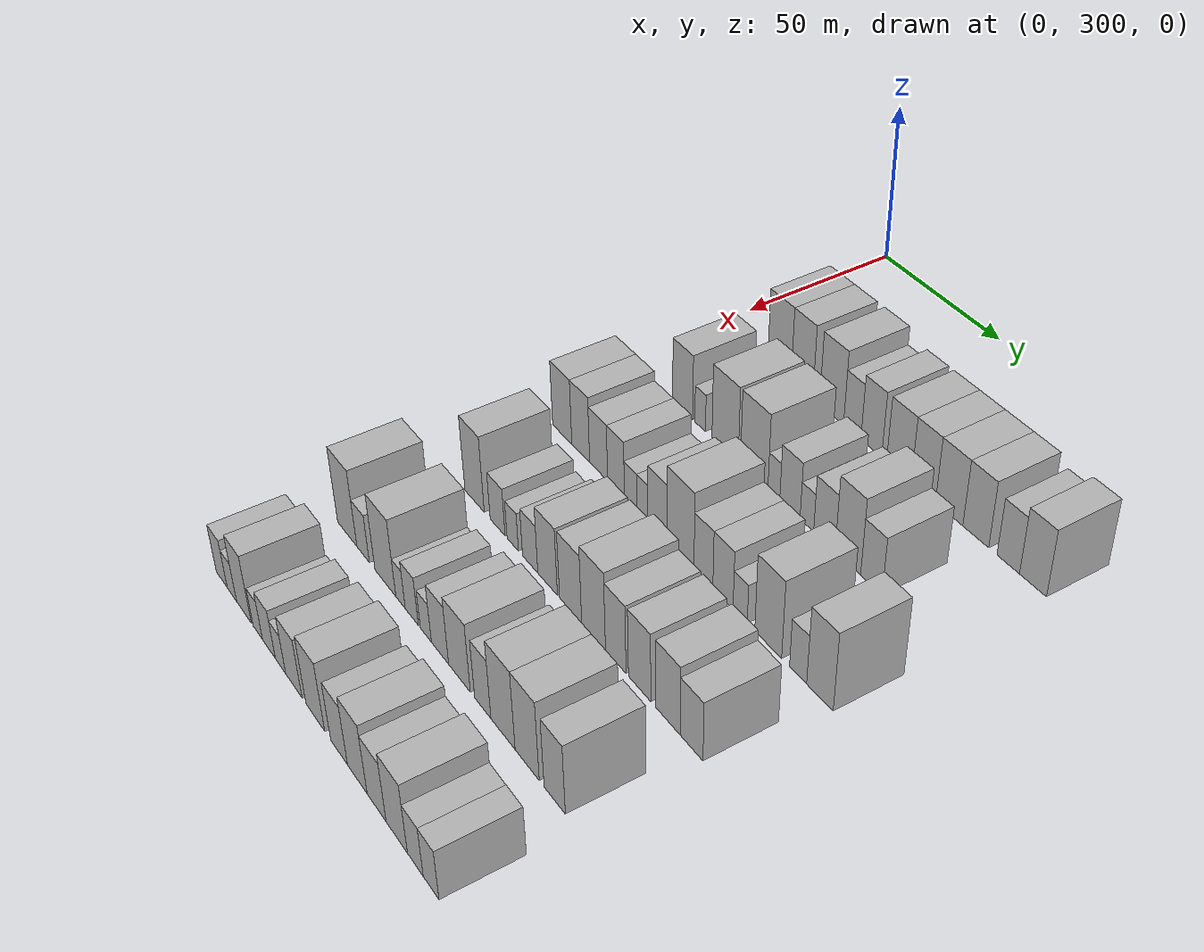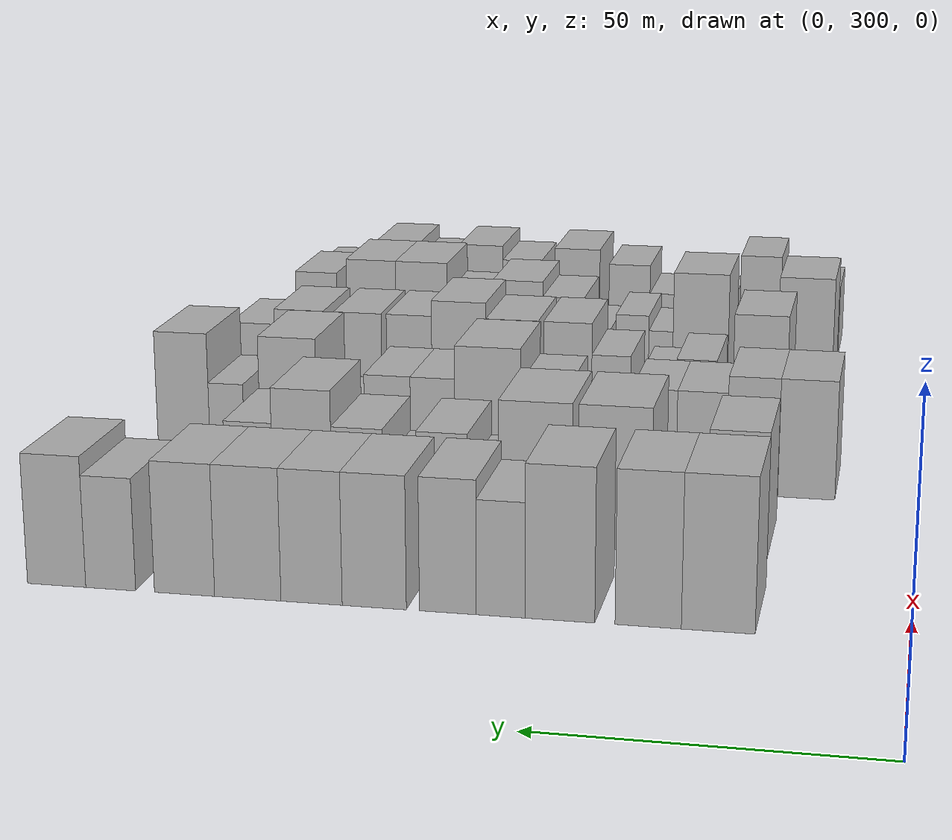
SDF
<sdf version="1.6">
 <world name="default">
  <model name="building_92">
   <static>1</static>
   <pose>50.0000 327.7333 0 0.000000 0.000000 0.000000</pose>
   <link name="link">
    <pose>0 0 12.00 0 0 0</pose>
    <collision name="collision"><geometry><box><size>20.0000 10.7605 24.0000</size></box></geometry></collision>
    <visual name="visual">
     <cast_shadows>0</cast_shadows>
     <geometry><box><size>20.0000 10.7605 24.0000</size></box></geometry>
     <material>
      <script>
       <uri>model://HANNAS_wall/materials/scripts</uri>
       <uri>model://HANNAS_wall/materials/textures</uri>
       <name>vrc/HANNAS_wall</name>
      </script>
     </material>
    </visual>
   </link>
  </model>
  <model name="building_93">
   <static>1</static>
   <pose>50.0000 338.0000 0 0.000000 0.000000 0.000000</pose>
   <link name="link">
    <pose>0 0 12.00 0 0 0</pose>
    <collision name="collision"><geometry><box><size>20.0000 9.7730 24.0000</size></box></geometry></collision>
    <visual name="visual">
     <cast_shadows>0</cast_shadows>
     <geometry><box><size>20.0000 9.7730 24.0000</size></box></geometry>
     <material>
      <script>
       <uri>model://HANNAS_wall/materials/scripts</uri>
       <uri>model://HANNAS_wall/materials/textures</uri>
       <name>vrc/HANNAS_wall</name>
      </script>
     </material>
    </visual>
   </link>
  </model>
  <model name="building_94">
   <static>1</static>
   <pose>50.0000 351.1039 0 0.000000 0.000000 0.000000</pose>
   <link name="link">
    <pose>0 0 12.00 0 0 0</pose>
    <collision name="collision"><geometry><box><size>20.0000 10.4348 24.0000</size></box></geometry></collision>
    <visual name="visual">
     <cast_shadows>0</cast_shadows>
     <geometry><box><size>20.0000 10.4348 24.0000</size></box></geometry>
     <material>
      <script>
       <uri>model://HANNAS_wall/materials/scripts</uri>
       <uri>model://HANNAS_wall/materials/textures</uri>
       <name>vrc/HANNAS_wall</name>
      </script>
     </material>
    </visual>
   </link>
  </model>
  <model name="building_95">
   <static>1</static>
   <pose>50.0000 359.9968 0 0.000000 0.000000 0.000000</pose>
   <link name="link">
    <pose>0 0 9.00 0 0 0</pose>
    <collision name="collision"><geometry><box><size>20.0000 7.3510 18.0000</size></box></geometry></collision>
    <visual name="visual">
     <cast_shadows>0</cast_shadows>
     <geometry><box><size>20.0000 7.3510 18.0000</size></box></geometry>
     <material>
      <script>
       <uri>model://HANNAS_wall/materials/scripts</uri>
       <uri>model://HANNAS_wall/materials/textures</uri>
       <name>vrc/HANNAS_wall</name>
      </script>
     </material>
    </visual>
   </link>
  </model>
  <model name="building_96">
   <static>1</static>
   <pose>50.0000 367.9909 0 0.000000 0.000000 0.000000</pose>
   <link name="link">
    <pose>0 0 10.50 0 0 0</pose>
    <collision name="collision"><geometry><box><size>20.0000 8.6372 21.0000</size></box></geometry></collision>
    <visual name="visual">
     <cast_shadows>0</cast_shadows>
     <geometry><box><size>20.0000 8.6372 21.0000</size></box></geometry>
     <material>
      <script>
       <uri>model://HANNAS_wall/materials/scripts</uri>
       <uri>model://HANNAS_wall/materials/textures</uri>
       <name>vrc/HANNAS_wall</name>
      </script>
     </material>
    </visual>
   </link>
  </model>
  <model name="building_97">
   <static>1</static>
   <pose>50.0000 379.2488 0 0.000000 0.000000 0.000000</pose>
   <link name="link">
    <pose>0 0 10.50 0 0 0</pose>
    <collision name="collision"><geometry><box><size>20.0000 9.8785 21.0000</size></box></geometry></collision>
    <visual name="visual">
     <cast_shadows>0</cast_shadows>
     <geometry><box><size>20.0000 9.8785 21.0000</size></box></geometry>
     <material>
      <script>
       <uri>model://HANNAS_wall/materials/scripts</uri>
       <uri>model://HANNAS_wall/materials/textures</uri>
       <name>vrc/HANNAS_wall</name>
      </script>
     </material>
    </visual>
   </link>
  </model>
  <model name="building_98">
   <static>1</static>
   <pose>50.0000 388.9491 0 0.000000 0.000000 0.000000</pose>
   <link name="link">
    <pose>0 0 10.50 0 0 0</pose>
    <collision name="collision"><geometry><box><size>20.0000 9.5221 21.0000</size></box></geometry></collision>
    <visual name="visual">
     <cast_shadows>0</cast_shadows>
     <geometry><box><size>20.0000 9.5221 21.0000</size></box></geometry>
     <material>
      <script>
       <uri>model://HANNAS_wall/materials/scripts</uri>
       <uri>model://HANNAS_wall/materials/textures</uri>
       <name>vrc/HANNAS_wall</name>
      </script>
     </material>
    </visual>
   </link>
  </model>
  <model name="building_99">
   <static>1</static>
   <pose>50.0000 398.9266 0 0.000000 0.000000 0.000000</pose>
   <link name="link">
    <pose>0 0 10.50 0 0 0</pose>
    <collision name="collision"><geometry><box><size>20.0000 10.4328 21.0000</size></box></geometry></collision>
    <visual name="visual">
     <cast_shadows>0</cast_shadows>
     <geometry><box><size>20.0000 10.4328 21.0000</size></box></geometry>
     <material>
      <script>
       <uri>model://HANNAS_wall/materials/scripts</uri>
       <uri>model://HANNAS_wall/materials/textures</uri>
       <name>vrc/HANNAS_wall</name>
      </script>
     </material>
    </visual>
   </link>
  </model>
  <model name="building_100">
   <static>1</static>
   <pose>50.0000 408.9227 0 0.000000 0.000000 0.000000</pose>
   <link name="link">
    <pose>0 0 10.50 0 0 0</pose>
    <collision name="collision"><geometry><box><size>20.0000 9.5594 21.0000</size></box></geometry></collision>
    <visual name="visual">
     <cast_shadows>0</cast_shadows>
     <geometry><box><size>20.0000 9.5594 21.0000</size></box></geometry>
     <material>
      <script>
       <uri>model://HANNAS_wall/materials/scripts</uri>
       <uri>model://HANNAS_wall/materials/textures</uri>
       <name>vrc/HANNAS_wall</name>
      </script>
     </material>
    </visual>
   </link>
  </model>
  <model name="building_101">
   <static>1</static>
   <pose>50.0000 420.7105 0 0.000000 0.000000 0.000000</pose>
   <link name="link">
    <pose>0 0 9.00 0 0 0</pose>
    <collision name="collision"><geometry><box><size>20.0000 8.0162 18.0000</size></box></geometry></collision>
    <visual name="visual">
     <cast_shadows>0</cast_shadows>
     <geometry><box><size>20.0000 8.0162 18.0000</size></box></geometry>
     <material>
      <script>
       <uri>model://HANNAS_wall/materials/scripts</uri>
       <uri>model://HANNAS_wall/materials/textures</uri>
       <name>vrc/HANNAS_wall</name>
      </script>
     </material>
    </visual>
   </link>
  </model>
  <model name="building_102">
   <static>1</static>
   <pose>50.0000 429.4424 0 0.000000 0.000000 0.000000</pose>
   <link name="link">
    <pose>0 0 10.50 0 0 0</pose>
    <collision name="collision"><geometry><box><size>20.0000 9.4476 21.0000</size></box></geometry></collision>
    <visual name="visual">
     <cast_shadows>0</cast_shadows>
     <geometry><box><size>20.0000 9.4476 21.0000</size></box></geometry>
     <material>
      <script>
       <uri>model://HANNAS_wall/materials/scripts</uri>
       <uri>model://HANNAS_wall/materials/textures</uri>
       <name>vrc/HANNAS_wall</name>
      </script>
     </material>
    </visual>
   </link>
  </model>
  <model name="building_214">
   <static>1</static>
   <pose>82.0000 327.9430 0 0.000000 0.000000 0.000000</pose>
   <link name="link">
    <pose>0 0 10.50 0 0 0</pose>
    <collision name="collision"><geometry><box><size>20.0000 9.5480 21.0000</size></box></geometry></collision>
    <visual name="visual">
     <cast_shadows>0</cast_shadows>
     <geometry><box><size>20.0000 9.5480 21.0000</size></box></geometry>
     <material>
      <script>
       <uri>model://HANNAS_wall/materials/scripts</uri>
       <uri>model://HANNAS_wall/materials/textures</uri>
       <name>vrc/HANNAS_wall</name>
      </script>
     </material>
    </visual>
   </link>
  </model>
  <model name="building_215">
   <static>1</static>
   <pose>82.0000 336.1948 0 0.000000 0.000000 0.000000</pose>
   <link name="link">
    <pose>0 0 6.00 0 0 0</pose>
    <collision name="collision"><geometry><box><size>20.0000 4.9556 12.0000</size></box></geometry></collision>
    <visual name="visual">
     <cast_shadows>0</cast_shadows>
     <geometry><box><size>20.0000 4.9556 12.0000</size></box></geometry>
     <material>
      <script>
       <uri>model://HANNAS_wall/materials/scripts</uri>
       <uri>model://HANNAS_wall/materials/textures</uri>
       <name>vrc/HANNAS_wall</name>
      </script>
     </material>
    </visual>
   </link>
  </model>
  <model name="building_216">
   <static>1</static>
   <pose>82.0000 347.6004 0 0.000000 0.000000 0.000000</pose>
   <link name="link">
    <pose>0 0 12.00 0 0 0</pose>
    <collision name="collision"><geometry><box><size>20.0000 11.8556 24.0000</size></box></geometry></collision>
    <visual name="visual">
     <cast_shadows>0</cast_shadows>
     <geometry><box><size>20.0000 11.8556 24.0000</size></box></geometry>
     <material>
      <script>
       <uri>model://HANNAS_wall/materials/scripts</uri>
       <uri>model://HANNAS_wall/materials/textures</uri>
       <name>vrc/HANNAS_wall</name>
      </script>
     </material>
    </visual>
   </link>
  </model>
  <model name="building_217">
   <static>1</static>
   <pose>82.0000 360.5243 0 0.000000 0.000000 0.000000</pose>
   <link name="link">
    <pose>0 0 12.00 0 0 0</pose>
    <collision name="collision"><geometry><box><size>20.0000 11.9923 24.0000</size></box></geometry></collision>
    <visual name="visual">
     <cast_shadows>0</cast_shadows>
     <geometry><box><size>20.0000 11.9923 24.0000</size></box></geometry>
     <material>
      <script>
       <uri>model://HANNAS_wall/materials/scripts</uri>
       <uri>model://HANNAS_wall/materials/textures</uri>
       <name>vrc/HANNAS_wall</name>
      </script>
     </material>
    </visual>
   </link>
  </model>
  <model name="building_218">
   <static>1</static>
   <pose>82.0000 369.0583 0 0.000000 0.000000 0.000000</pose>
   <link name="link">
    <pose>0 0 6.00 0 0 0</pose>
    <collision name="collision"><geometry><box><size>20.0000 5.0758 12.0000</size></box></geometry></collision>
    <visual name="visual">
     <cast_shadows>0</cast_shadows>
     <geometry><box><size>20.0000 5.0758 12.0000</size></box></geometry>
     <material>
      <script>
       <uri>model://HANNAS_wall/materials/scripts</uri>
       <uri>model://HANNAS_wall/materials/textures</uri>
       <name>vrc/HANNAS_wall</name>
      </script>
     </material>
    </visual>
   </link>
  </model>
  <model name="building_219">
   <static>1</static>
   <pose>82.0000 375.8293 0 0.000000 0.000000 0.000000</pose>
   <link name="link">
    <pose>0 0 9.00 0 0 0</pose>
    <collision name="collision"><geometry><box><size>20.0000 8.4662 18.0000</size></box></geometry></collision>
    <visual name="visual">
     <cast_shadows>0</cast_shadows>
     <geometry><box><size>20.0000 8.4662 18.0000</size></box></geometry>
     <material>
      <script>
       <uri>model://HANNAS_wall/materials/scripts</uri>
       <uri>model://HANNAS_wall/materials/textures</uri>
       <name>vrc/HANNAS_wall</name>
      </script>
     </material>
    </visual>
   </link>
  </model>
  <model name="building_220">
   <static>1</static>
   <pose>82.0000 382.8485 0 0.000000 0.000000 0.000000</pose>
   <link name="link">
    <pose>0 0 6.00 0 0 0</pose>
    <collision name="collision"><geometry><box><size>20.0000 5.5722 12.0000</size></box></geometry></collision>
    <visual name="visual">
     <cast_shadows>0</cast_shadows>
     <geometry><box><size>20.0000 5.5722 12.0000</size></box></geometry>
     <material>
      <script>
       <uri>model://HANNAS_wall/materials/scripts</uri>
       <uri>model://HANNAS_wall/materials/textures</uri>
       <name>vrc/HANNAS_wall</name>
      </script>
     </material>
    </visual>
   </link>
  </model>
  <model name="building_221">
   <static>1</static>
   <pose>82.0000 389.9258 0 0.000000 0.000000 0.000000</pose>
   <link name="link">
    <pose>0 0 9.00 0 0 0</pose>
    <collision name="collision"><geometry><box><size>20.0000 8.5824 18.0000</size></box></geometry></collision>
    <visual name="visual">
     <cast_shadows>0</cast_shadows>
     <geometry><box><size>20.0000 8.5824 18.0000</size></box></geometry>
     <material>
      <script>
       <uri>model://HANNAS_wall/materials/scripts</uri>
       <uri>model://HANNAS_wall/materials/textures</uri>
       <name>vrc/HANNAS_wall</name>
      </script>
     </material>
    </visual>
   </link>
  </model>
  <model name="building_222">
   <static>1</static>
   <pose>82.0000 399.2079 0 0.000000 0.000000 0.000000</pose>
   <link name="link">
    <pose>0 0 12.00 0 0 0</pose>
    <collision name="collision"><geometry><box><size>20.0000 9.9817 24.0000</size></box></geometry></collision>
    <visual name="visual">
     <cast_shadows>0</cast_shadows>
     <geometry><box><size>20.0000 9.9817 24.0000</size></box></geometry>
     <material>
      <script>
       <uri>model://HANNAS_wall/materials/scripts</uri>
       <uri>model://HANNAS_wall/materials/textures</uri>
       <name>vrc/HANNAS_wall</name>
      </script>
     </material>
    </visual>
   </link>
  </model>
  <model name="building_223">
   <static>1</static>
   <pose>82.0000 408.2731 0 0.000000 0.000000 0.000000</pose>
   <link name="link">
    <pose>0 0 9.00 0 0 0</pose>
    <collision name="collision"><geometry><box><size>20.0000 8.1489 18.0000</size></box></geometry></collision>
    <visual name="visual">
     <cast_shadows>0</cast_shadows>
     <geometry><box><size>20.0000 8.1489 18.0000</size></box></geometry>
     <material>
      <script>
       <uri>model://HANNAS_wall/materials/scripts</uri>
       <uri>model://HANNAS_wall/materials/textures</uri>
       <name>vrc/HANNAS_wall</name>
      </script>
     </material>
    </visual>
   </link>
  </model>
  <model name="building_332">
   <static>1</static>
   <pose>114.0000 319.0108 0 0.000000 0.000000 0.000000</pose>
   <link name="link">
    <pose>0 0 10.50 0 0 0</pose>
    <collision name="collision"><geometry><box><size>20.0000 9.7533 21.0000</size></box></geometry></collision>
    <visual name="visual">
     <cast_shadows>0</cast_shadows>
     <geometry><box><size>20.0000 9.7533 21.0000</size></box></geometry>
     <material>
      <script>
       <uri>model://HANNAS_wall/materials/scripts</uri>
       <uri>model://HANNAS_wall/materials/textures</uri>
       <name>vrc/HANNAS_wall</name>
      </script>
     </material>
    </visual>
   </link>
  </model>
  <model name="building_333">
   <static>1</static>
   <pose>114.0000 328.3187 0 0.000000 0.000000 0.000000</pose>
   <link name="link">
    <pose>0 0 10.50 0 0 0</pose>
    <collision name="collision"><geometry><box><size>20.0000 8.8625 21.0000</size></box></geometry></collision>
    <visual name="visual">
     <cast_shadows>0</cast_shadows>
     <geometry><box><size>20.0000 8.8625 21.0000</size></box></geometry>
     <material>
      <script>
       <uri>model://HANNAS_wall/materials/scripts</uri>
       <uri>model://HANNAS_wall/materials/textures</uri>
       <name>vrc/HANNAS_wall</name>
      </script>
     </material>
    </visual>
   </link>
  </model>
  <model name="building_334">
   <static>1</static>
   <pose>114.0000 337.1081 0 0.000000 0.000000 0.000000</pose>
   <link name="link">
    <pose>0 0 9.00 0 0 0</pose>
    <collision name="collision"><geometry><box><size>20.0000 8.7164 18.0000</size></box></geometry></collision>
    <visual name="visual">
     <cast_shadows>0</cast_shadows>
     <geometry><box><size>20.0000 8.7164 18.0000</size></box></geometry>
     <material>
      <script>
       <uri>model://HANNAS_wall/materials/scripts</uri>
       <uri>model://HANNAS_wall/materials/textures</uri>
       <name>vrc/HANNAS_wall</name>
      </script>
     </material>
    </visual>
   </link>
  </model>
  <model name="building_335">
   <static>1</static>
   <pose>114.0000 345.4382 0 0.000000 0.000000 0.000000</pose>
   <link name="link">
    <pose>0 0 9.00 0 0 0</pose>
    <collision name="collision"><geometry><box><size>20.0000 7.9438 18.0000</size></box></geometry></collision>
    <visual name="visual">
     <cast_shadows>0</cast_shadows>
     <geometry><box><size>20.0000 7.9438 18.0000</size></box></geometry>
     <material>
      <script>
       <uri>model://HANNAS_wall/materials/scripts</uri>
       <uri>model://HANNAS_wall/materials/textures</uri>
       <name>vrc/HANNAS_wall</name>
      </script>
     </material>
    </visual>
   </link>
  </model>
  <model name="building_336">
   <static>1</static>
   <pose>114.0000 352.3848 0 0.000000 0.000000 0.000000</pose>
   <link name="link">
    <pose>0 0 6.00 0 0 0</pose>
    <collision name="collision"><geometry><box><size>20.0000 5.9495 12.0000</size></box></geometry></collision>
    <visual name="visual">
     <cast_shadows>0</cast_shadows>
     <geometry><box><size>20.0000 5.9495 12.0000</size></box></geometry>
     <material>
      <script>
       <uri>model://HANNAS_wall/materials/scripts</uri>
       <uri>model://HANNAS_wall/materials/textures</uri>
       <name>vrc/HANNAS_wall</name>
      </script>
     </material>
    </visual>
   </link>
  </model>
  <model name="building_337">
   <static>1</static>
   <pose>114.0000 357.7670 0 0.000000 0.000000 0.000000</pose>
   <link name="link">
    <pose>0 0 6.00 0 0 0</pose>
    <collision name="collision"><geometry><box><size>20.0000 4.8148 12.0000</size></box></geometry></collision>
    <visual name="visual">
     <cast_shadows>0</cast_shadows>
     <geometry><box><size>20.0000 4.8148 12.0000</size></box></geometry>
     <material>
      <script>
       <uri>model://HANNAS_wall/materials/scripts</uri>
       <uri>model://HANNAS_wall/materials/textures</uri>
       <name>vrc/HANNAS_wall</name>
      </script>
     </material>
    </visual>
   </link>
  </model>
  <model name="building_338">
   <static>1</static>
   <pose>114.0000 364.5063 0 0.000000 0.000000 0.000000</pose>
   <link name="link">
    <pose>0 0 9.00 0 0 0</pose>
    <collision name="collision"><geometry><box><size>20.0000 8.6639 18.0000</size></box></geometry></collision>
    <visual name="visual">
     <cast_shadows>0</cast_shadows>
     <geometry><box><size>20.0000 8.6639 18.0000</size></box></geometry>
     <material>
      <script>
       <uri>model://HANNAS_wall/materials/scripts</uri>
       <uri>model://HANNAS_wall/materials/textures</uri>
       <name>vrc/HANNAS_wall</name>
      </script>
     </material>
    </visual>
   </link>
  </model>
  <model name="building_339">
   <static>1</static>
   <pose>114.0000 374.6667 0 0.000000 0.000000 0.000000</pose>
   <link name="link">
    <pose>0 0 12.00 0 0 0</pose>
    <collision name="collision"><geometry><box><size>20.0000 11.6568 24.0000</size></box></geometry></collision>
    <visual name="visual">
     <cast_shadows>0</cast_shadows>
     <geometry><box><size>20.0000 11.6568 24.0000</size></box></geometry>
     <material>
      <script>
       <uri>model://HANNAS_wall/materials/scripts</uri>
       <uri>model://HANNAS_wall/materials/textures</uri>
       <name>vrc/HANNAS_wall</name>
      </script>
     </material>
    </visual>
   </link>
  </model>
  <model name="building_340">
   <static>1</static>
   <pose>114.0000 384.4807 0 0.000000 0.000000 0.000000</pose>
   <link name="link">
    <pose>0 0 9.00 0 0 0</pose>
    <collision name="collision"><geometry><box><size>20.0000 7.9712 18.0000</size></box></geometry></collision>
    <visual name="visual">
     <cast_shadows>0</cast_shadows>
     <geometry><box><size>20.0000 7.9712 18.0000</size></box></geometry>
     <material>
      <script>
       <uri>model://HANNAS_wall/materials/scripts</uri>
       <uri>model://HANNAS_wall/materials/textures</uri>
       <name>vrc/HANNAS_wall</name>
      </script>
     </material>
    </visual>
   </link>
  </model>
  <model name="building_341">
   <static>1</static>
   <pose>114.0000 392.6262 0 0.000000 0.000000 0.000000</pose>
   <link name="link">
    <pose>0 0 9.00 0 0 0</pose>
    <collision name="collision"><geometry><box><size>20.0000 8.3199 18.0000</size></box></geometry></collision>
    <visual name="visual">
     <cast_shadows>0</cast_shadows>
     <geometry><box><size>20.0000 8.3199 18.0000</size></box></geometry>
     <material>
      <script>
       <uri>model://HANNAS_wall/materials/scripts</uri>
       <uri>model://HANNAS_wall/materials/textures</uri>
       <name>vrc/HANNAS_wall</name>
      </script>
     </material>
    </visual>
   </link>
  </model>
  <model name="building_342">
   <static>1</static>
   <pose>114.0000 399.6478 0 0.000000 0.000000 0.000000</pose>
   <link name="link">
    <pose>0 0 6.00 0 0 0</pose>
    <collision name="collision"><geometry><box><size>20.0000 5.7232 12.0000</size></box></geometry></collision>
    <visual name="visual">
     <cast_shadows>0</cast_shadows>
     <geometry><box><size>20.0000 5.7232 12.0000</size></box></geometry>
     <material>
      <script>
       <uri>model://HANNAS_wall/materials/scripts</uri>
       <uri>model://HANNAS_wall/materials/textures</uri>
       <name>vrc/HANNAS_wall</name>
      </script>
     </material>
    </visual>
   </link>
  </model>
  <model name="building_343">
   <static>1</static>
   <pose>114.0000 410.7427 0 0.000000 0.000000 0.000000</pose>
   <link name="link">
    <pose>0 0 12.00 0 0 0</pose>
    <collision name="collision"><geometry><box><size>20.0000 10.4666 24.0000</size></box></geometry></collision>
    <visual name="visual">
     <cast_shadows>0</cast_shadows>
     <geometry><box><size>20.0000 10.4666 24.0000</size></box></geometry>
     <material>
      <script>
       <uri>model://HANNAS_wall/materials/scripts</uri>
       <uri>model://HANNAS_wall/materials/textures</uri>
       <name>vrc/HANNAS_wall</name>
      </script>
     </material>
    </visual>
   </link>
  </model>
  <model name="building_344">
   <static>1</static>
   <pose>114.0000 422.1888 0 0.000000 0.000000 0.000000</pose>
   <link name="link">
    <pose>0 0 7.50 0 0 0</pose>
    <collision name="collision"><geometry><box><size>20.0000 6.4254 15.0000</size></box></geometry></collision>
    <visual name="visual">
     <cast_shadows>0</cast_shadows>
     <geometry><box><size>20.0000 6.4254 15.0000</size></box></geometry>
     <material>
      <script>
       <uri>model://HANNAS_wall/materials/scripts</uri>
       <uri>model://HANNAS_wall/materials/textures</uri>
       <name>vrc/HANNAS_wall</name>
      </script>
     </material>
    </visual>
   </link>
  </model>
  <model name="building_345">
   <static>1</static>
   <pose>114.0000 430.2718 0 0.000000 0.000000 0.000000</pose>
   <link name="link">
    <pose>0 0 12.00 0 0 0</pose>
    <collision name="collision"><geometry><box><size>20.0000 9.7406 24.0000</size></box></geometry></collision>
    <visual name="visual">
     <cast_shadows>0</cast_shadows>
     <geometry><box><size>20.0000 9.7406 24.0000</size></box></geometry>
     <material>
      <script>
       <uri>model://HANNAS_wall/materials/scripts</uri>
       <uri>model://HANNAS_wall/materials/textures</uri>
       <name>vrc/HANNAS_wall</name>
      </script>
     </material>
    </visual>
   </link>
  </model>
  <model name="building_455">
   <static>1</static>
   <pose>146.0000 329.8105 0 0.000000 0.000000 0.000000</pose>
   <link name="link">
    <pose>0 0 12.00 0 0 0</pose>
    <collision name="collision"><geometry><box><size>20.0000 10.0080 24.0000</size></box></geometry></collision>
    <visual name="visual">
     <cast_shadows>0</cast_shadows>
     <geometry><box><size>20.0000 10.0080 24.0000</size></box></geometry>
     <material>
      <script>
       <uri>model://HANNAS_wall/materials/scripts</uri>
       <uri>model://HANNAS_wall/materials/textures</uri>
       <name>vrc/HANNAS_wall</name>
      </script>
     </material>
    </visual>
   </link>
  </model>
  <model name="building_456">
   <static>1</static>
   <pose>146.0000 341.5616 0 0.000000 0.000000 0.000000</pose>
   <link name="link">
    <pose>0 0 7.50 0 0 0</pose>
    <collision name="collision"><geometry><box><size>20.0000 7.4942 15.0000</size></box></geometry></collision>
    <visual name="visual">
     <cast_shadows>0</cast_shadows>
     <geometry><box><size>20.0000 7.4942 15.0000</size></box></geometry>
     <material>
      <script>
       <uri>model://HANNAS_wall/materials/scripts</uri>
       <uri>model://HANNAS_wall/materials/textures</uri>
       <name>vrc/HANNAS_wall</name>
      </script>
     </material>
    </visual>
   </link>
  </model>
  <model name="building_457">
   <static>1</static>
   <pose>146.0000 349.0942 0 0.000000 0.000000 0.000000</pose>
   <link name="link">
    <pose>0 0 6.00 0 0 0</pose>
    <collision name="collision"><geometry><box><size>20.0000 5.5710 12.0000</size></box></geometry></collision>
    <visual name="visual">
     <cast_shadows>0</cast_shadows>
     <geometry><box><size>20.0000 5.5710 12.0000</size></box></geometry>
     <material>
      <script>
       <uri>model://HANNAS_wall/materials/scripts</uri>
       <uri>model://HANNAS_wall/materials/textures</uri>
       <name>vrc/HANNAS_wall</name>
      </script>
     </material>
    </visual>
   </link>
  </model>
  <model name="building_458">
   <static>1</static>
   <pose>146.0000 357.5356 0 0.000000 0.000000 0.000000</pose>
   <link name="link">
    <pose>0 0 7.50 0 0 0</pose>
    <collision name="collision"><geometry><box><size>20.0000 7.3118 15.0000</size></box></geometry></collision>
    <visual name="visual">
     <cast_shadows>0</cast_shadows>
     <geometry><box><size>20.0000 7.3118 15.0000</size></box></geometry>
     <material>
      <script>
       <uri>model://HANNAS_wall/materials/scripts</uri>
       <uri>model://HANNAS_wall/materials/textures</uri>
       <name>vrc/HANNAS_wall</name>
      </script>
     </material>
    </visual>
   </link>
  </model>
  <model name="building_459">
   <static>1</static>
   <pose>146.0000 365.7643 0 0.000000 0.000000 0.000000</pose>
   <link name="link">
    <pose>0 0 10.50 0 0 0</pose>
    <collision name="collision"><geometry><box><size>20.0000 9.1458 21.0000</size></box></geometry></collision>
    <visual name="visual">
     <cast_shadows>0</cast_shadows>
     <geometry><box><size>20.0000 9.1458 21.0000</size></box></geometry>
     <material>
      <script>
       <uri>model://HANNAS_wall/materials/scripts</uri>
       <uri>model://HANNAS_wall/materials/textures</uri>
       <name>vrc/HANNAS_wall</name>
      </script>
     </material>
    </visual>
   </link>
  </model>
  <model name="building_460">
   <static>1</static>
   <pose>146.0000 376.3286 0 0.000000 0.000000 0.000000</pose>
   <link name="link">
    <pose>0 0 10.50 0 0 0</pose>
    <collision name="collision"><geometry><box><size>20.0000 9.9828 21.0000</size></box></geometry></collision>
    <visual name="visual">
     <cast_shadows>0</cast_shadows>
     <geometry><box><size>20.0000 9.9828 21.0000</size></box></geometry>
     <material>
      <script>
       <uri>model://HANNAS_wall/materials/scripts</uri>
       <uri>model://HANNAS_wall/materials/textures</uri>
       <name>vrc/HANNAS_wall</name>
      </script>
     </material>
    </visual>
   </link>
  </model>
  <model name="building_461">
   <static>1</static>
   <pose>146.0000 386.5348 0 0.000000 0.000000 0.000000</pose>
   <link name="link">
    <pose>0 0 12.00 0 0 0</pose>
    <collision name="collision"><geometry><box><size>20.0000 10.4297 24.0000</size></box></geometry></collision>
    <visual name="visual">
     <cast_shadows>0</cast_shadows>
     <geometry><box><size>20.0000 10.4297 24.0000</size></box></geometry>
     <material>
      <script>
       <uri>model://HANNAS_wall/materials/scripts</uri>
       <uri>model://HANNAS_wall/materials/textures</uri>
       <name>vrc/HANNAS_wall</name>
      </script>
     </material>
    </visual>
   </link>
  </model>
  <model name="building_462">
   <static>1</static>
   <pose>146.0000 396.1195 0 0.000000 0.000000 0.000000</pose>
   <link name="link">
    <pose>0 0 10.50 0 0 0</pose>
    <collision name="collision"><geometry><box><size>20.0000 8.7397 21.0000</size></box></geometry></collision>
    <visual name="visual">
     <cast_shadows>0</cast_shadows>
     <geometry><box><size>20.0000 8.7397 21.0000</size></box></geometry>
     <material>
      <script>
       <uri>model://HANNAS_wall/materials/scripts</uri>
       <uri>model://HANNAS_wall/materials/textures</uri>
       <name>vrc/HANNAS_wall</name>
      </script>
     </material>
    </visual>
   </link>
  </model>
  <model name="building_463">
   <static>1</static>
   <pose>146.0000 406.1047 0 0.000000 0.000000 0.000000</pose>
   <link name="link">
    <pose>0 0 10.50 0 0 0</pose>
    <collision name="collision"><geometry><box><size>20.0000 9.2306 21.0000</size></box></geometry></collision>
    <visual name="visual">
     <cast_shadows>0</cast_shadows>
     <geometry><box><size>20.0000 9.2306 21.0000</size></box></geometry>
     <material>
      <script>
       <uri>model://HANNAS_wall/materials/scripts</uri>
       <uri>model://HANNAS_wall/materials/textures</uri>
       <name>vrc/HANNAS_wall</name>
      </script>
     </material>
    </visual>
   </link>
  </model>
  <model name="building_464">
   <static>1</static>
   <pose>146.0000 417.5682 0 0.000000 0.000000 0.000000</pose>
   <link name="link">
    <pose>0 0 10.50 0 0 0</pose>
    <collision name="collision"><geometry><box><size>20.0000 9.6964 21.0000</size></box></geometry></collision>
    <visual name="visual">
     <cast_shadows>0</cast_shadows>
     <geometry><box><size>20.0000 9.6964 21.0000</size></box></geometry>
     <material>
      <script>
       <uri>model://HANNAS_wall/materials/scripts</uri>
       <uri>model://HANNAS_wall/materials/textures</uri>
       <name>vrc/HANNAS_wall</name>
      </script>
     </material>
    </visual>
   </link>
  </model>
  <model name="building_465">
   <static>1</static>
   <pose>146.0000 426.7848 0 0.000000 0.000000 0.000000</pose>
   <link name="link">
    <pose>0 0 9.00 0 0 0</pose>
    <collision name="collision"><geometry><box><size>20.0000 8.7366 18.0000</size></box></geometry></collision>
    <visual name="visual">
     <cast_shadows>0</cast_shadows>
     <geometry><box><size>20.0000 8.7366 18.0000</size></box></geometry>
     <material>
      <script>
       <uri>model://HANNAS_wall/materials/scripts</uri>
       <uri>model://HANNAS_wall/materials/textures</uri>
       <name>vrc/HANNAS_wall</name>
      </script>
     </material>
    </visual>
   </link>
  </model>
  <model name="building_576">
   <static>1</static>
   <pose>178.0000 323.4744 0 0.000000 0.000000 0.000000</pose>
   <link name="link">
    <pose>0 0 12.00 0 0 0</pose>
    <collision name="collision"><geometry><box><size>20.0000 10.7996 24.0000</size></box></geometry></collision>
    <visual name="visual">
     <cast_shadows>0</cast_shadows>
     <geometry><box><size>20.0000 10.7996 24.0000</size></box></geometry>
     <material>
      <script>
       <uri>model://HANNAS_wall/materials/scripts</uri>
       <uri>model://HANNAS_wall/materials/textures</uri>
       <name>vrc/HANNAS_wall</name>
      </script>
     </material>
    </visual>
   </link>
  </model>
  <model name="building_577">
   <static>1</static>
   <pose>178.0000 332.2931 0 0.000000 0.000000 0.000000</pose>
   <link name="link">
    <pose>0 0 7.50 0 0 0</pose>
    <collision name="collision"><geometry><box><size>20.0000 6.8377 15.0000</size></box></geometry></collision>
    <visual name="visual">
     <cast_shadows>0</cast_shadows>
     <geometry><box><size>20.0000 6.8377 15.0000</size></box></geometry>
     <material>
      <script>
       <uri>model://HANNAS_wall/materials/scripts</uri>
       <uri>model://HANNAS_wall/materials/textures</uri>
       <name>vrc/HANNAS_wall</name>
      </script>
     </material>
    </visual>
   </link>
  </model>
  <model name="building_578">
   <static>1</static>
   <pose>178.0000 344.2242 0 0.000000 0.000000 0.000000</pose>
   <link name="link">
    <pose>0 0 12.00 0 0 0</pose>
    <collision name="collision"><geometry><box><size>20.0000 11.0246 24.0000</size></box></geometry></collision>
    <visual name="visual">
     <cast_shadows>0</cast_shadows>
     <geometry><box><size>20.0000 11.0246 24.0000</size></box></geometry>
     <material>
      <script>
       <uri>model://HANNAS_wall/materials/scripts</uri>
       <uri>model://HANNAS_wall/materials/textures</uri>
       <name>vrc/HANNAS_wall</name>
      </script>
     </material>
    </visual>
   </link>
  </model>
  <model name="building_579">
   <static>1</static>
   <pose>178.0000 352.1578 0 0.000000 0.000000 0.000000</pose>
   <link name="link">
    <pose>0 0 6.00 0 0 0</pose>
    <collision name="collision"><geometry><box><size>20.0000 4.8426 12.0000</size></box></geometry></collision>
    <visual name="visual">
     <cast_shadows>0</cast_shadows>
     <geometry><box><size>20.0000 4.8426 12.0000</size></box></geometry>
     <material>
      <script>
       <uri>model://HANNAS_wall/materials/scripts</uri>
       <uri>model://HANNAS_wall/materials/textures</uri>
       <name>vrc/HANNAS_wall</name>
      </script>
     </material>
    </visual>
   </link>
  </model>
  <model name="building_580">
   <static>1</static>
   <pose>178.0000 357.8995 0 0.000000 0.000000 0.000000</pose>
   <link name="link">
    <pose>0 0 7.50 0 0 0</pose>
    <collision name="collision"><geometry><box><size>20.0000 6.6407 15.0000</size></box></geometry></collision>
    <visual name="visual">
     <cast_shadows>0</cast_shadows>
     <geometry><box><size>20.0000 6.6407 15.0000</size></box></geometry>
     <material>
      <script>
       <uri>model://HANNAS_wall/materials/scripts</uri>
       <uri>model://HANNAS_wall/materials/textures</uri>
       <name>vrc/HANNAS_wall</name>
      </script>
     </material>
    </visual>
   </link>
  </model>
  <model name="building_581">
   <static>1</static>
   <pose>178.0000 364.9559 0 0.000000 0.000000 0.000000</pose>
   <link name="link">
    <pose>0 0 6.00 0 0 0</pose>
    <collision name="collision"><geometry><box><size>20.0000 5.4719 12.0000</size></box></geometry></collision>
    <visual name="visual">
     <cast_shadows>0</cast_shadows>
     <geometry><box><size>20.0000 5.4719 12.0000</size></box></geometry>
     <material>
      <script>
       <uri>model://HANNAS_wall/materials/scripts</uri>
       <uri>model://HANNAS_wall/materials/textures</uri>
       <name>vrc/HANNAS_wall</name>
      </script>
     </material>
    </visual>
   </link>
  </model>
  <model name="building_582">
   <static>1</static>
   <pose>178.0000 371.8762 0 0.000000 0.000000 0.000000</pose>
   <link name="link">
    <pose>0 0 9.00 0 0 0</pose>
    <collision name="collision"><geometry><box><size>20.0000 8.3689 18.0000</size></box></geometry></collision>
    <visual name="visual">
     <cast_shadows>0</cast_shadows>
     <geometry><box><size>20.0000 8.3689 18.0000</size></box></geometry>
     <material>
      <script>
       <uri>model://HANNAS_wall/materials/scripts</uri>
       <uri>model://HANNAS_wall/materials/textures</uri>
       <name>vrc/HANNAS_wall</name>
      </script>
     </material>
    </visual>
   </link>
  </model>
  <model name="building_583">
   <static>1</static>
   <pose>178.0000 381.1610 0 0.000000 0.000000 0.000000</pose>
   <link name="link">
    <pose>0 0 10.50 0 0 0</pose>
    <collision name="collision"><geometry><box><size>20.0000 10.2006 21.0000</size></box></geometry></collision>
    <visual name="visual">
     <cast_shadows>0</cast_shadows>
     <geometry><box><size>20.0000 10.2006 21.0000</size></box></geometry>
     <material>
      <script>
       <uri>model://HANNAS_wall/materials/scripts</uri>
       <uri>model://HANNAS_wall/materials/textures</uri>
       <name>vrc/HANNAS_wall</name>
      </script>
     </material>
    </visual>
   </link>
  </model>
  <model name="building_584">
   <static>1</static>
   <pose>178.0000 391.9469 0 0.000000 0.000000 0.000000</pose>
   <link name="link">
    <pose>0 0 9.00 0 0 0</pose>
    <collision name="collision"><geometry><box><size>20.0000 7.3711 18.0000</size></box></geometry></collision>
    <visual name="visual">
     <cast_shadows>0</cast_shadows>
     <geometry><box><size>20.0000 7.3711 18.0000</size></box></geometry>
     <material>
      <script>
       <uri>model://HANNAS_wall/materials/scripts</uri>
       <uri>model://HANNAS_wall/materials/textures</uri>
       <name>vrc/HANNAS_wall</name>
      </script>
     </material>
    </visual>
   </link>
  </model>
  <model name="building_585">
   <static>1</static>
   <pose>178.0000 400.9728 0 0.000000 0.000000 0.000000</pose>
   <link name="link">
    <pose>0 0 12.00 0 0 0</pose>
    <collision name="collision"><geometry><box><size>20.0000 10.6808 24.0000</size></box></geometry></collision>
    <visual name="visual">
     <cast_shadows>0</cast_shadows>
     <geometry><box><size>20.0000 10.6808 24.0000</size></box></geometry>
     <material>
      <script>
       <uri>model://HANNAS_wall/materials/scripts</uri>
       <uri>model://HANNAS_wall/materials/textures</uri>
       <name>vrc/HANNAS_wall</name>
      </script>
     </material>
    </visual>
   </link>
  </model>
  <model name="building_586">
   <static>1</static>
   <pose>178.0000 411.4612 0 0.000000 0.000000 0.000000</pose>
   <link name="link">
    <pose>0 0 12.00 0 0 0</pose>
    <collision name="collision"><geometry><box><size>20.0000 10.2962 24.0000</size></box></geometry></collision>
    <visual name="visual">
     <cast_shadows>0</cast_shadows>
     <geometry><box><size>20.0000 10.2962 24.0000</size></box></geometry>
     <material>
      <script>
       <uri>model://HANNAS_wall/materials/scripts</uri>
       <uri>model://HANNAS_wall/materials/textures</uri>
       <name>vrc/HANNAS_wall</name>
      </script>
     </material>
    </visual>
   </link>
  </model>
  <model name="building_587">
   <static>1</static>
   <pose>178.0000 422.9642 0 0.000000 0.000000 0.000000</pose>
   <link name="link">
    <pose>0 0 10.50 0 0 0</pose>
    <collision name="collision"><geometry><box><size>20.0000 8.7097 21.0000</size></box></geometry></collision>
    <visual name="visual">
     <cast_shadows>0</cast_shadows>
     <geometry><box><size>20.0000 8.7097 21.0000</size></box></geometry>
     <material>
      <script>
       <uri>model://HANNAS_wall/materials/scripts</uri>
       <uri>model://HANNAS_wall/materials/textures</uri>
       <name>vrc/HANNAS_wall</name>
      </script>
     </material>
    </visual>
   </link>
  </model>
  <model name="building_689">
   <static>1</static>
   <pose>210.0000 321.7636 0 0.000000 0.000000 0.000000</pose>
   <link name="link">
    <pose>0 0 7.50 0 0 0</pose>
    <collision name="collision"><geometry><box><size>20.0000 6.7113 15.0000</size></box></geometry></collision>
    <visual name="visual">
     <cast_shadows>0</cast_shadows>
     <geometry><box><size>20.0000 6.7113 15.0000</size></box></geometry>
     <material>
      <script>
       <uri>model://HANNAS_wall/materials/scripts</uri>
       <uri>model://HANNAS_wall/materials/textures</uri>
       <name>vrc/HANNAS_wall</name>
      </script>
     </material>
    </visual>
   </link>
  </model>
  <model name="building_690">
   <static>1</static>
   <pose>210.0000 327.9071 0 0.000000 0.000000 0.000000</pose>
   <link name="link">
    <pose>0 0 6.00 0 0 0</pose>
    <collision name="collision"><geometry><box><size>20.0000 5.5757 12.0000</size></box></geometry></collision>
    <visual name="visual">
     <cast_shadows>0</cast_shadows>
     <geometry><box><size>20.0000 5.5757 12.0000</size></box></geometry>
     <material>
      <script>
       <uri>model://HANNAS_wall/materials/scripts</uri>
       <uri>model://HANNAS_wall/materials/textures</uri>
       <name>vrc/HANNAS_wall</name>
      </script>
     </material>
    </visual>
   </link>
  </model>
  <model name="building_691">
   <static>1</static>
   <pose>210.0000 334.9862 0 0.000000 0.000000 0.000000</pose>
   <link name="link">
    <pose>0 0 10.50 0 0 0</pose>
    <collision name="collision"><geometry><box><size>20.0000 8.5824 21.0000</size></box></geometry></collision>
    <visual name="visual">
     <cast_shadows>0</cast_shadows>
     <geometry><box><size>20.0000 8.5824 21.0000</size></box></geometry>
     <material>
      <script>
       <uri>model://HANNAS_wall/materials/scripts</uri>
       <uri>model://HANNAS_wall/materials/textures</uri>
       <name>vrc/HANNAS_wall</name>
      </script>
     </material>
    </visual>
   </link>
  </model>
  <model name="building_692">
   <static>1</static>
   <pose>210.0000 342.9724 0 0.000000 0.000000 0.000000</pose>
   <link name="link">
    <pose>0 0 6.00 0 0 0</pose>
    <collision name="collision"><geometry><box><size>20.0000 5.3901 12.0000</size></box></geometry></collision>
    <visual name="visual">
     <cast_shadows>0</cast_shadows>
     <geometry><box><size>20.0000 5.3901 12.0000</size></box></geometry>
     <material>
      <script>
       <uri>model://HANNAS_wall/materials/scripts</uri>
       <uri>model://HANNAS_wall/materials/textures</uri>
       <name>vrc/HANNAS_wall</name>
      </script>
     </material>
    </visual>
   </link>
  </model>
  <model name="building_693">
   <static>1</static>
   <pose>210.0000 349.2607 0 0.000000 0.000000 0.000000</pose>
   <link name="link">
    <pose>0 0 7.50 0 0 0</pose>
    <collision name="collision"><geometry><box><size>20.0000 7.1865 15.0000</size></box></geometry></collision>
    <visual name="visual">
     <cast_shadows>0</cast_shadows>
     <geometry><box><size>20.0000 7.1865 15.0000</size></box></geometry>
     <material>
      <script>
       <uri>model://HANNAS_wall/materials/scripts</uri>
       <uri>model://HANNAS_wall/materials/textures</uri>
       <name>vrc/HANNAS_wall</name>
      </script>
     </material>
    </visual>
   </link>
  </model>
  <model name="building_694">
   <static>1</static>
   <pose>210.0000 355.6727 0 0.000000 0.000000 0.000000</pose>
   <link name="link">
    <pose>0 0 6.00 0 0 0</pose>
    <collision name="collision"><geometry><box><size>20.0000 5.6374 12.0000</size></box></geometry></collision>
    <visual name="visual">
     <cast_shadows>0</cast_shadows>
     <geometry><box><size>20.0000 5.6374 12.0000</size></box></geometry>
     <material>
      <script>
       <uri>model://HANNAS_wall/materials/scripts</uri>
       <uri>model://HANNAS_wall/materials/textures</uri>
       <name>vrc/HANNAS_wall</name>
      </script>
     </material>
    </visual>
   </link>
  </model>
  <model name="building_695">
   <static>1</static>
   <pose>210.0000 362.8905 0 0.000000 0.000000 0.000000</pose>
   <link name="link">
    <pose>0 0 9.00 0 0 0</pose>
    <collision name="collision"><geometry><box><size>20.0000 8.7983 18.0000</size></box></geometry></collision>
    <visual name="visual">
     <cast_shadows>0</cast_shadows>
     <geometry><box><size>20.0000 8.7983 18.0000</size></box></geometry>
     <material>
      <script>
       <uri>model://HANNAS_wall/materials/scripts</uri>
       <uri>model://HANNAS_wall/materials/textures</uri>
       <name>vrc/HANNAS_wall</name>
      </script>
     </material>
    </visual>
   </link>
  </model>
  <model name="building_696">
   <static>1</static>
   <pose>210.0000 374.1428 0 0.000000 0.000000 0.000000</pose>
   <link name="link">
    <pose>0 0 10.50 0 0 0</pose>
    <collision name="collision"><geometry><box><size>20.0000 9.7061 21.0000</size></box></geometry></collision>
    <visual name="visual">
     <cast_shadows>0</cast_shadows>
     <geometry><box><size>20.0000 9.7061 21.0000</size></box></geometry>
     <material>
      <script>
       <uri>model://HANNAS_wall/materials/scripts</uri>
       <uri>model://HANNAS_wall/materials/textures</uri>
       <name>vrc/HANNAS_wall</name>
      </script>
     </material>
    </visual>
   </link>
  </model>
  <model name="building_697">
   <static>1</static>
   <pose>210.0000 386.1737 0 0.000000 0.000000 0.000000</pose>
   <link name="link">
    <pose>0 0 9.00 0 0 0</pose>
    <collision name="collision"><geometry><box><size>20.0000 8.3558 18.0000</size></box></geometry></collision>
    <visual name="visual">
     <cast_shadows>0</cast_shadows>
     <geometry><box><size>20.0000 8.3558 18.0000</size></box></geometry>
     <material>
      <script>
       <uri>model://HANNAS_wall/materials/scripts</uri>
       <uri>model://HANNAS_wall/materials/textures</uri>
       <name>vrc/HANNAS_wall</name>
      </script>
     </material>
    </visual>
   </link>
  </model>
  <model name="building_698">
   <static>1</static>
   <pose>210.0000 395.0665 0 0.000000 0.000000 0.000000</pose>
   <link name="link">
    <pose>0 0 10.50 0 0 0</pose>
    <collision name="collision"><geometry><box><size>20.0000 9.4297 21.0000</size></box></geometry></collision>
    <visual name="visual">
     <cast_shadows>0</cast_shadows>
     <geometry><box><size>20.0000 9.4297 21.0000</size></box></geometry>
     <material>
      <script>
       <uri>model://HANNAS_wall/materials/scripts</uri>
       <uri>model://HANNAS_wall/materials/textures</uri>
       <name>vrc/HANNAS_wall</name>
      </script>
     </material>
    </visual>
   </link>
  </model>
  <model name="building_699">
   <static>1</static>
   <pose>210.0000 404.2127 0 0.000000 0.000000 0.000000</pose>
   <link name="link">
    <pose>0 0 9.00 0 0 0</pose>
    <collision name="collision"><geometry><box><size>20.0000 8.8627 18.0000</size></box></geometry></collision>
    <visual name="visual">
     <cast_shadows>0</cast_shadows>
     <geometry><box><size>20.0000 8.8627 18.0000</size></box></geometry>
     <material>
      <script>
       <uri>model://HANNAS_wall/materials/scripts</uri>
       <uri>model://HANNAS_wall/materials/textures</uri>
       <name>vrc/HANNAS_wall</name>
      </script>
     </material>
    </visual>
   </link>
  </model>
  <model name="building_700">
   <static>1</static>
   <pose>210.0000 413.4538 0 0.000000 0.000000 0.000000</pose>
   <link name="link">
    <pose>0 0 10.50 0 0 0</pose>
    <collision name="collision"><geometry><box><size>20.0000 9.6195 21.0000</size></box></geometry></collision>
    <visual name="visual">
     <cast_shadows>0</cast_shadows>
     <geometry><box><size>20.0000 9.6195 21.0000</size></box></geometry>
     <material>
      <script>
       <uri>model://HANNAS_wall/materials/scripts</uri>
       <uri>model://HANNAS_wall/materials/textures</uri>
       <name>vrc/HANNAS_wall</name>
      </script>
     </material>
    </visual>
   </link>
  </model>
  <model name="building_701">
   <static>1</static>
   <pose>210.0000 421.7249 0 0.000000 0.000000 0.000000</pose>
   <link name="link">
    <pose>0 0 7.50 0 0 0</pose>
    <collision name="collision"><geometry><box><size>20.0000 6.9226 15.0000</size></box></geometry></collision>
    <visual name="visual">
     <cast_shadows>0</cast_shadows>
     <geometry><box><size>20.0000 6.9226 15.0000</size></box></geometry>
     <material>
      <script>
       <uri>model://HANNAS_wall/materials/scripts</uri>
       <uri>model://HANNAS_wall/materials/textures</uri>
       <name>vrc/HANNAS_wall</name>
      </script>
     </material>
    </visual>
   </link>
  </model>
  <model name="building_702">
   <static>1</static>
   <pose>210.0000 428.5696 0 0.000000 0.000000 0.000000</pose>
   <link name="link">
    <pose>0 0 7.50 0 0 0</pose>
    <collision name="collision"><geometry><box><size>20.0000 6.7667 15.0000</size></box></geometry></collision>
    <visual name="visual">
     <cast_shadows>0</cast_shadows>
     <geometry><box><size>20.0000 6.7667 15.0000</size></box></geometry>
     <material>
      <script>
       <uri>model://HANNAS_wall/materials/scripts</uri>
       <uri>model://HANNAS_wall/materials/textures</uri>
       <name>vrc/HANNAS_wall</name>
      </script>
     </material>
    </visual>
   </link>
  </model>
 </world>
</sdf>
